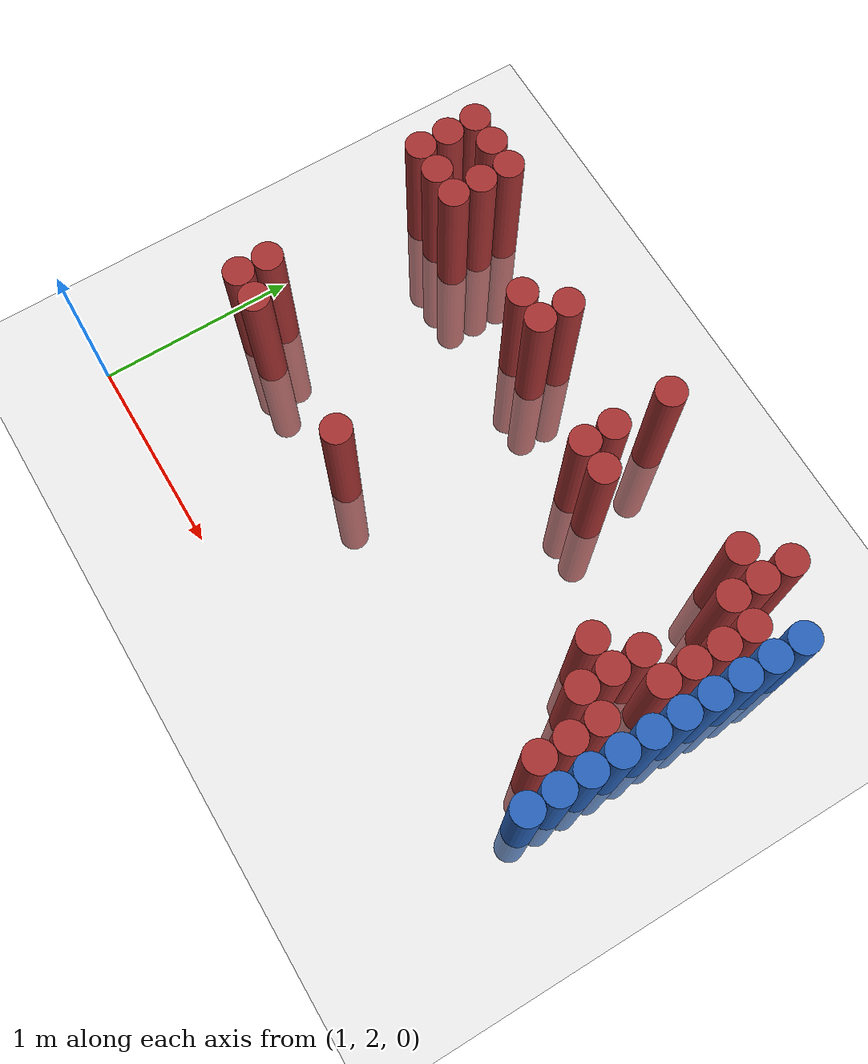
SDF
<sdf version="1.6">
 <world name="default">
  <model name="ground_plane">
   <static>1</static>
   <link name="link">
    <collision name="collision">
     <geometry><plane><normal>0 0 1</normal><size>100 100</size></plane></geometry>
     <surface><friction><ode><mu>100</mu><mu2>50</mu2></ode></friction></surface>
    </collision>
    <visual name="visual">
     <cast_shadows>0</cast_shadows>
     <geometry><plane><normal>0 0 1</normal><size>100 100</size></plane></geometry>
     <material>
      <script><uri>file://media/materials/scripts/gazebo.material</uri><name>Gazebo/Grey</name></script>
     </material>
    </visual>
   </link>
  </model>
  <model name="unit_cylinder_150">
   <static>1</static>
   <pose>3.925000 2.725000 0.000000 0.000000 0.000000 0.000000</pose>
   <link name="link">
    <inertial>
     <mass>1</mass>
     <inertia><ixx>0.145833</ixx><ixy>0</ixy><ixz>0</ixz><iyy>0.145833</iyy><iyz>0</iyz><izz>0.125</izz></inertia>
    </inertial>
    <collision name="collision">
     <geometry><cylinder><radius>0.075000</radius><length>1.5</length></cylinder></geometry>
    </collision>
    <visual name="visual">
     <geometry><cylinder><radius>0.075000</radius><length>1.5</length></cylinder></geometry>
     <material>
      <ambient>0.152000 0.379000 0.720000 1</ambient>
      <diffuse>0.152000 0.379000 0.720000 1</diffuse>
     </material>
     <material>
      <script><name>Gazebo/Grey</name><uri>file://media/materials/scripts/gazebo.material</uri></script>
     </material>
    </visual>
   </link>
  </model>
  <model name="unit_cylinder_152">
   <static>1</static>
   <pose>3.925000 2.875000 0.000000 0.000000 0.000000 0.000000</pose>
   <link name="link">
    <inertial>
     <mass>1</mass>
     <inertia><ixx>0.145833</ixx><ixy>0</ixy><ixz>0</ixz><iyy>0.145833</iyy><iyz>0</iyz><izz>0.125</izz></inertia>
    </inertial>
    <collision name="collision">
     <geometry><cylinder><radius>0.075000</radius><length>1.5</length></cylinder></geometry>
    </collision>
    <visual name="visual">
     <geometry><cylinder><radius>0.075000</radius><length>1.5</length></cylinder></geometry>
     <material>
      <ambient>0.152000 0.379000 0.720000 1</ambient>
      <diffuse>0.152000 0.379000 0.720000 1</diffuse>
     </material>
     <material>
      <script><name>Gazebo/Grey</name><uri>file://media/materials/scripts/gazebo.material</uri></script>
     </material>
    </visual>
   </link>
  </model>
  <model name="unit_cylinder_154">
   <static>1</static>
   <pose>3.925000 3.025000 0.000000 0.000000 0.000000 0.000000</pose>
   <link name="link">
    <inertial>
     <mass>1</mass>
     <inertia><ixx>0.145833</ixx><ixy>0</ixy><ixz>0</ixz><iyy>0.145833</iyy><iyz>0</iyz><izz>0.125</izz></inertia>
    </inertial>
    <collision name="collision">
     <geometry><cylinder><radius>0.075000</radius><length>1.5</length></cylinder></geometry>
    </collision>
    <visual name="visual">
     <geometry><cylinder><radius>0.075000</radius><length>1.5</length></cylinder></geometry>
     <material>
      <ambient>0.152000 0.379000 0.720000 1</ambient>
      <diffuse>0.152000 0.379000 0.720000 1</diffuse>
     </material>
     <material>
      <script><name>Gazebo/Grey</name><uri>file://media/materials/scripts/gazebo.material</uri></script>
     </material>
    </visual>
   </link>
  </model>
  <model name="unit_cylinder_156">
   <static>1</static>
   <pose>3.925000 3.175000 0.000000 0.000000 0.000000 0.000000</pose>
   <link name="link">
    <inertial>
     <mass>1</mass>
     <inertia><ixx>0.145833</ixx><ixy>0</ixy><ixz>0</ixz><iyy>0.145833</iyy><iyz>0</iyz><izz>0.125</izz></inertia>
    </inertial>
    <collision name="collision">
     <geometry><cylinder><radius>0.075000</radius><length>1.5</length></cylinder></geometry>
    </collision>
    <visual name="visual">
     <geometry><cylinder><radius>0.075000</radius><length>1.5</length></cylinder></geometry>
     <material>
      <ambient>0.152000 0.379000 0.720000 1</ambient>
      <diffuse>0.152000 0.379000 0.720000 1</diffuse>
     </material>
     <material>
      <script><name>Gazebo/Grey</name><uri>file://media/materials/scripts/gazebo.material</uri></script>
     </material>
    </visual>
   </link>
  </model>
  <model name="unit_cylinder_158">
   <static>1</static>
   <pose>3.925000 3.325000 0.000000 0.000000 0.000000 0.000000</pose>
   <link name="link">
    <inertial>
     <mass>1</mass>
     <inertia><ixx>0.145833</ixx><ixy>0</ixy><ixz>0</ixz><iyy>0.145833</iyy><iyz>0</iyz><izz>0.125</izz></inertia>
    </inertial>
    <collision name="collision">
     <geometry><cylinder><radius>0.075000</radius><length>1.5</length></cylinder></geometry>
    </collision>
    <visual name="visual">
     <geometry><cylinder><radius>0.075000</radius><length>1.5</length></cylinder></geometry>
     <material>
      <ambient>0.152000 0.379000 0.720000 1</ambient>
      <diffuse>0.152000 0.379000 0.720000 1</diffuse>
     </material>
     <material>
      <script><name>Gazebo/Grey</name><uri>file://media/materials/scripts/gazebo.material</uri></script>
     </material>
    </visual>
   </link>
  </model>
  <model name="unit_cylinder_160">
   <static>1</static>
   <pose>3.925000 3.475000 0.000000 0.000000 0.000000 0.000000</pose>
   <link name="link">
    <inertial>
     <mass>1</mass>
     <inertia><ixx>0.145833</ixx><ixy>0</ixy><ixz>0</ixz><iyy>0.145833</iyy><iyz>0</iyz><izz>0.125</izz></inertia>
    </inertial>
    <collision name="collision">
     <geometry><cylinder><radius>0.075000</radius><length>1.5</length></cylinder></geometry>
    </collision>
    <visual name="visual">
     <geometry><cylinder><radius>0.075000</radius><length>1.5</length></cylinder></geometry>
     <material>
      <ambient>0.152000 0.379000 0.720000 1</ambient>
      <diffuse>0.152000 0.379000 0.720000 1</diffuse>
     </material>
     <material>
      <script><name>Gazebo/Grey</name><uri>file://media/materials/scripts/gazebo.material</uri></script>
     </material>
    </visual>
   </link>
  </model>
  <model name="unit_cylinder_162">
   <static>1</static>
   <pose>3.925000 3.625000 0.000000 0.000000 0.000000 0.000000</pose>
   <link name="link">
    <inertial>
     <mass>1</mass>
     <inertia><ixx>0.145833</ixx><ixy>0</ixy><ixz>0</ixz><iyy>0.145833</iyy><iyz>0</iyz><izz>0.125</izz></inertia>
    </inertial>
    <collision name="collision">
     <geometry><cylinder><radius>0.075000</radius><length>1.5</length></cylinder></geometry>
    </collision>
    <visual name="visual">
     <geometry><cylinder><radius>0.075000</radius><length>1.5</length></cylinder></geometry>
     <material>
      <ambient>0.152000 0.379000 0.720000 1</ambient>
      <diffuse>0.152000 0.379000 0.720000 1</diffuse>
     </material>
     <material>
      <script><name>Gazebo/Grey</name><uri>file://media/materials/scripts/gazebo.material</uri></script>
     </material>
    </visual>
   </link>
  </model>
  <model name="unit_cylinder_164">
   <static>1</static>
   <pose>3.925000 3.775000 0.000000 0.000000 0.000000 0.000000</pose>
   <link name="link">
    <inertial>
     <mass>1</mass>
     <inertia><ixx>0.145833</ixx><ixy>0</ixy><ixz>0</ixz><iyy>0.145833</iyy><iyz>0</iyz><izz>0.125</izz></inertia>
    </inertial>
    <collision name="collision">
     <geometry><cylinder><radius>0.075000</radius><length>1.5</length></cylinder></geometry>
    </collision>
    <visual name="visual">
     <geometry><cylinder><radius>0.075000</radius><length>1.5</length></cylinder></geometry>
     <material>
      <ambient>0.152000 0.379000 0.720000 1</ambient>
      <diffuse>0.152000 0.379000 0.720000 1</diffuse>
     </material>
     <material>
      <script><name>Gazebo/Grey</name><uri>file://media/materials/scripts/gazebo.material</uri></script>
     </material>
    </visual>
   </link>
  </model>
  <model name="unit_cylinder_166">
   <static>1</static>
   <pose>3.925000 3.925000 0.000000 0.000000 0.000000 0.000000</pose>
   <link name="link">
    <inertial>
     <mass>1</mass>
     <inertia><ixx>0.145833</ixx><ixy>0</ixy><ixz>0</ixz><iyy>0.145833</iyy><iyz>0</iyz><izz>0.125</izz></inertia>
    </inertial>
    <collision name="collision">
     <geometry><cylinder><radius>0.075000</radius><length>1.5</length></cylinder></geometry>
    </collision>
    <visual name="visual">
     <geometry><cylinder><radius>0.075000</radius><length>1.5</length></cylinder></geometry>
     <material>
      <ambient>0.152000 0.379000 0.720000 1</ambient>
      <diffuse>0.152000 0.379000 0.720000 1</diffuse>
     </material>
     <material>
      <script><name>Gazebo/Grey</name><uri>file://media/materials/scripts/gazebo.material</uri></script>
     </material>
    </visual>
   </link>
  </model>
  <model name="unit_cylinder_443">
   <static>1</static>
   <pose>1.075000 3.775000 0.000000 0.000000 0.000000 0.000000</pose>
   <link name="link">
    <inertial>
     <mass>1</mass>
     <inertia><ixx>0.145833</ixx><ixy>0</ixy><ixz>0</ixz><iyy>0.145833</iyy><iyz>0</iyz><izz>0.125</izz></inertia>
    </inertial>
    <collision name="collision">
     <geometry><cylinder><radius>0.075000</radius><length>1.5</length></cylinder></geometry>
    </collision>
    <visual name="visual">
     <geometry><cylinder><radius>0.075000</radius><length>1.5</length></cylinder></geometry>
     <material>
      <ambient>0.648000 0.192000 0.192000 1</ambient>
      <diffuse>0.648000 0.192000 0.192000 1</diffuse>
     </material>
     <material>
      <script><name>Gazebo/Grey</name><uri>file://media/materials/scripts/gazebo.material</uri></script>
     </material>
    </visual>
   </link>
  </model>
  <model name="unit_cylinder_444">
   <static>1</static>
   <pose>1.075000 3.925000 0.000000 0.000000 0.000000 0.000000</pose>
   <link name="link">
    <inertial>
     <mass>1</mass>
     <inertia><ixx>0.145833</ixx><ixy>0</ixy><ixz>0</ixz><iyy>0.145833</iyy><iyz>0</iyz><izz>0.125</izz></inertia>
    </inertial>
    <collision name="collision">
     <geometry><cylinder><radius>0.075000</radius><length>1.5</length></cylinder></geometry>
    </collision>
    <visual name="visual">
     <geometry><cylinder><radius>0.075000</radius><length>1.5</length></cylinder></geometry>
     <material>
      <ambient>0.648000 0.192000 0.192000 1</ambient>
      <diffuse>0.648000 0.192000 0.192000 1</diffuse>
     </material>
     <material>
      <script><name>Gazebo/Grey</name><uri>file://media/materials/scripts/gazebo.material</uri></script>
     </material>
    </visual>
   </link>
  </model>
  <model name="unit_cylinder_445">
   <static>1</static>
   <pose>1.075000 4.075000 0.000000 0.000000 0.000000 0.000000</pose>
   <link name="link">
    <inertial>
     <mass>1</mass>
     <inertia><ixx>0.145833</ixx><ixy>0</ixy><ixz>0</ixz><iyy>0.145833</iyy><iyz>0</iyz><izz>0.125</izz></inertia>
    </inertial>
    <collision name="collision">
     <geometry><cylinder><radius>0.075000</radius><length>1.5</length></cylinder></geometry>
    </collision>
    <visual name="visual">
     <geometry><cylinder><radius>0.075000</radius><length>1.5</length></cylinder></geometry>
     <material>
      <ambient>0.648000 0.192000 0.192000 1</ambient>
      <diffuse>0.648000 0.192000 0.192000 1</diffuse>
     </material>
     <material>
      <script><name>Gazebo/Grey</name><uri>file://media/materials/scripts/gazebo.material</uri></script>
     </material>
    </visual>
   </link>
  </model>
  <model name="unit_cylinder_454">
   <static>1</static>
   <pose>1.225000 2.725000 0.000000 0.000000 0.000000 0.000000</pose>
   <link name="link">
    <inertial>
     <mass>1</mass>
     <inertia><ixx>0.145833</ixx><ixy>0</ixy><ixz>0</ixz><iyy>0.145833</iyy><iyz>0</iyz><izz>0.125</izz></inertia>
    </inertial>
    <collision name="collision">
     <geometry><cylinder><radius>0.075000</radius><length>1.5</length></cylinder></geometry>
    </collision>
    <visual name="visual">
     <geometry><cylinder><radius>0.075000</radius><length>1.5</length></cylinder></geometry>
     <material>
      <ambient>0.648000 0.192000 0.192000 1</ambient>
      <diffuse>0.648000 0.192000 0.192000 1</diffuse>
     </material>
     <material>
      <script><name>Gazebo/Grey</name><uri>file://media/materials/scripts/gazebo.material</uri></script>
     </material>
    </visual>
   </link>
  </model>
  <model name="unit_cylinder_455">
   <static>1</static>
   <pose>1.225000 2.875000 0.000000 0.000000 0.000000 0.000000</pose>
   <link name="link">
    <inertial>
     <mass>1</mass>
     <inertia><ixx>0.145833</ixx><ixy>0</ixy><ixz>0</ixz><iyy>0.145833</iyy><iyz>0</iyz><izz>0.125</izz></inertia>
    </inertial>
    <collision name="collision">
     <geometry><cylinder><radius>0.075000</radius><length>1.5</length></cylinder></geometry>
    </collision>
    <visual name="visual">
     <geometry><cylinder><radius>0.075000</radius><length>1.5</length></cylinder></geometry>
     <material>
      <ambient>0.648000 0.192000 0.192000 1</ambient>
      <diffuse>0.648000 0.192000 0.192000 1</diffuse>
     </material>
     <material>
      <script><name>Gazebo/Grey</name><uri>file://media/materials/scripts/gazebo.material</uri></script>
     </material>
    </visual>
   </link>
  </model>
  <model name="unit_cylinder_456">
   <static>1</static>
   <pose>1.225000 3.775000 0.000000 0.000000 0.000000 0.000000</pose>
   <link name="link">
    <inertial>
     <mass>1</mass>
     <inertia><ixx>0.145833</ixx><ixy>0</ixy><ixz>0</ixz><iyy>0.145833</iyy><iyz>0</iyz><izz>0.125</izz></inertia>
    </inertial>
    <collision name="collision">
     <geometry><cylinder><radius>0.075000</radius><length>1.5</length></cylinder></geometry>
    </collision>
    <visual name="visual">
     <geometry><cylinder><radius>0.075000</radius><length>1.5</length></cylinder></geometry>
     <material>
      <ambient>0.648000 0.192000 0.192000 1</ambient>
      <diffuse>0.648000 0.192000 0.192000 1</diffuse>
     </material>
     <material>
      <script><name>Gazebo/Grey</name><uri>file://media/materials/scripts/gazebo.material</uri></script>
     </material>
    </visual>
   </link>
  </model>
  <model name="unit_cylinder_457">
   <static>1</static>
   <pose>1.225000 4.075000 0.000000 0.000000 0.000000 0.000000</pose>
   <link name="link">
    <inertial>
     <mass>1</mass>
     <inertia><ixx>0.145833</ixx><ixy>0</ixy><ixz>0</ixz><iyy>0.145833</iyy><iyz>0</iyz><izz>0.125</izz></inertia>
    </inertial>
    <collision name="collision">
     <geometry><cylinder><radius>0.075000</radius><length>1.5</length></cylinder></geometry>
    </collision>
    <visual name="visual">
     <geometry><cylinder><radius>0.075000</radius><length>1.5</length></cylinder></geometry>
     <material>
      <ambient>0.648000 0.192000 0.192000 1</ambient>
      <diffuse>0.648000 0.192000 0.192000 1</diffuse>
     </material>
     <material>
      <script><name>Gazebo/Grey</name><uri>file://media/materials/scripts/gazebo.material</uri></script>
     </material>
    </visual>
   </link>
  </model>
  <model name="unit_cylinder_463">
   <static>1</static>
   <pose>1.375000 2.725000 0.000000 0.000000 0.000000 0.000000</pose>
   <link name="link">
    <inertial>
     <mass>1</mass>
     <inertia><ixx>0.145833</ixx><ixy>0</ixy><ixz>0</ixz><iyy>0.145833</iyy><iyz>0</iyz><izz>0.125</izz></inertia>
    </inertial>
    <collision name="collision">
     <geometry><cylinder><radius>0.075000</radius><length>1.5</length></cylinder></geometry>
    </collision>
    <visual name="visual">
     <geometry><cylinder><radius>0.075000</radius><length>1.5</length></cylinder></geometry>
     <material>
      <ambient>0.648000 0.192000 0.192000 1</ambient>
      <diffuse>0.648000 0.192000 0.192000 1</diffuse>
     </material>
     <material>
      <script><name>Gazebo/Grey</name><uri>file://media/materials/scripts/gazebo.material</uri></script>
     </material>
    </visual>
   </link>
  </model>
  <model name="unit_cylinder_464">
   <static>1</static>
   <pose>1.375000 3.775000 0.000000 0.000000 0.000000 0.000000</pose>
   <link name="link">
    <inertial>
     <mass>1</mass>
     <inertia><ixx>0.145833</ixx><ixy>0</ixy><ixz>0</ixz><iyy>0.145833</iyy><iyz>0</iyz><izz>0.125</izz></inertia>
    </inertial>
    <collision name="collision">
     <geometry><cylinder><radius>0.075000</radius><length>1.5</length></cylinder></geometry>
    </collision>
    <visual name="visual">
     <geometry><cylinder><radius>0.075000</radius><length>1.5</length></cylinder></geometry>
     <material>
      <ambient>0.648000 0.192000 0.192000 1</ambient>
      <diffuse>0.648000 0.192000 0.192000 1</diffuse>
     </material>
     <material>
      <script><name>Gazebo/Grey</name><uri>file://media/materials/scripts/gazebo.material</uri></script>
     </material>
    </visual>
   </link>
  </model>
  <model name="unit_cylinder_465">
   <static>1</static>
   <pose>1.375000 3.925000 0.000000 0.000000 0.000000 0.000000</pose>
   <link name="link">
    <inertial>
     <mass>1</mass>
     <inertia><ixx>0.145833</ixx><ixy>0</ixy><ixz>0</ixz><iyy>0.145833</iyy><iyz>0</iyz><izz>0.125</izz></inertia>
    </inertial>
    <collision name="collision">
     <geometry><cylinder><radius>0.075000</radius><length>1.5</length></cylinder></geometry>
    </collision>
    <visual name="visual">
     <geometry><cylinder><radius>0.075000</radius><length>1.5</length></cylinder></geometry>
     <material>
      <ambient>0.648000 0.192000 0.192000 1</ambient>
      <diffuse>0.648000 0.192000 0.192000 1</diffuse>
     </material>
     <material>
      <script><name>Gazebo/Grey</name><uri>file://media/materials/scripts/gazebo.material</uri></script>
     </material>
    </visual>
   </link>
  </model>
  <model name="unit_cylinder_466">
   <static>1</static>
   <pose>1.375000 4.075000 0.000000 0.000000 0.000000 0.000000</pose>
   <link name="link">
    <inertial>
     <mass>1</mass>
     <inertia><ixx>0.145833</ixx><ixy>0</ixy><ixz>0</ixz><iyy>0.145833</iyy><iyz>0</iyz><izz>0.125</izz></inertia>
    </inertial>
    <collision name="collision">
     <geometry><cylinder><radius>0.075000</radius><length>1.5</length></cylinder></geometry>
    </collision>
    <visual name="visual">
     <geometry><cylinder><radius>0.075000</radius><length>1.5</length></cylinder></geometry>
     <material>
      <ambient>0.648000 0.192000 0.192000 1</ambient>
      <diffuse>0.648000 0.192000 0.192000 1</diffuse>
     </material>
     <material>
      <script><name>Gazebo/Grey</name><uri>file://media/materials/scripts/gazebo.material</uri></script>
     </material>
    </visual>
   </link>
  </model>
  <model name="unit_cylinder_488">
   <static>1</static>
   <pose>1.975000 3.775000 0.000000 0.000000 0.000000 0.000000</pose>
   <link name="link">
    <inertial>
     <mass>1</mass>
     <inertia><ixx>0.145833</ixx><ixy>0</ixy><ixz>0</ixz><iyy>0.145833</iyy><iyz>0</iyz><izz>0.125</izz></inertia>
    </inertial>
    <collision name="collision">
     <geometry><cylinder><radius>0.075000</radius><length>1.5</length></cylinder></geometry>
    </collision>
    <visual name="visual">
     <geometry><cylinder><radius>0.075000</radius><length>1.5</length></cylinder></geometry>
     <material>
      <ambient>0.648000 0.192000 0.192000 1</ambient>
      <diffuse>0.648000 0.192000 0.192000 1</diffuse>
     </material>
     <material>
      <script><name>Gazebo/Grey</name><uri>file://media/materials/scripts/gazebo.material</uri></script>
     </material>
    </visual>
   </link>
  </model>
  <model name="unit_cylinder_491">
   <static>1</static>
   <pose>2.125000 2.725000 0.000000 0.000000 0.000000 0.000000</pose>
   <link name="link">
    <inertial>
     <mass>1</mass>
     <inertia><ixx>0.145833</ixx><ixy>0</ixy><ixz>0</ixz><iyy>0.145833</iyy><iyz>0</iyz><izz>0.125</izz></inertia>
    </inertial>
    <collision name="collision">
     <geometry><cylinder><radius>0.075000</radius><length>1.5</length></cylinder></geometry>
    </collision>
    <visual name="visual">
     <geometry><cylinder><radius>0.075000</radius><length>1.5</length></cylinder></geometry>
     <material>
      <ambient>0.648000 0.192000 0.192000 1</ambient>
      <diffuse>0.648000 0.192000 0.192000 1</diffuse>
     </material>
     <material>
      <script><name>Gazebo/Grey</name><uri>file://media/materials/scripts/gazebo.material</uri></script>
     </material>
    </visual>
   </link>
  </model>
  <model name="unit_cylinder_492">
   <static>1</static>
   <pose>2.125000 3.775000 0.000000 0.000000 0.000000 0.000000</pose>
   <link name="link">
    <inertial>
     <mass>1</mass>
     <inertia><ixx>0.145833</ixx><ixy>0</ixy><ixz>0</ixz><iyy>0.145833</iyy><iyz>0</iyz><izz>0.125</izz></inertia>
    </inertial>
    <collision name="collision">
     <geometry><cylinder><radius>0.075000</radius><length>1.5</length></cylinder></geometry>
    </collision>
    <visual name="visual">
     <geometry><cylinder><radius>0.075000</radius><length>1.5</length></cylinder></geometry>
     <material>
      <ambient>0.648000 0.192000 0.192000 1</ambient>
      <diffuse>0.648000 0.192000 0.192000 1</diffuse>
     </material>
     <material>
      <script><name>Gazebo/Grey</name><uri>file://media/materials/scripts/gazebo.material</uri></script>
     </material>
    </visual>
   </link>
  </model>
  <model name="unit_cylinder_493">
   <static>1</static>
   <pose>2.125000 3.925000 0.000000 0.000000 0.000000 0.000000</pose>
   <link name="link">
    <inertial>
     <mass>1</mass>
     <inertia><ixx>0.145833</ixx><ixy>0</ixy><ixz>0</ixz><iyy>0.145833</iyy><iyz>0</iyz><izz>0.125</izz></inertia>
    </inertial>
    <collision name="collision">
     <geometry><cylinder><radius>0.075000</radius><length>1.5</length></cylinder></geometry>
    </collision>
    <visual name="visual">
     <geometry><cylinder><radius>0.075000</radius><length>1.5</length></cylinder></geometry>
     <material>
      <ambient>0.648000 0.192000 0.192000 1</ambient>
      <diffuse>0.648000 0.192000 0.192000 1</diffuse>
     </material>
     <material>
      <script><name>Gazebo/Grey</name><uri>file://media/materials/scripts/gazebo.material</uri></script>
     </material>
    </visual>
   </link>
  </model>
  <model name="unit_cylinder_514">
   <static>1</static>
   <pose>2.725000 3.625000 0.000000 0.000000 0.000000 0.000000</pose>
   <link name="link">
    <inertial>
     <mass>1</mass>
     <inertia><ixx>0.145833</ixx><ixy>0</ixy><ixz>0</ixz><iyy>0.145833</iyy><iyz>0</iyz><izz>0.125</izz></inertia>
    </inertial>
    <collision name="collision">
     <geometry><cylinder><radius>0.075000</radius><length>1.5</length></cylinder></geometry>
    </collision>
    <visual name="visual">
     <geometry><cylinder><radius>0.075000</radius><length>1.5</length></cylinder></geometry>
     <material>
      <ambient>0.648000 0.192000 0.192000 1</ambient>
      <diffuse>0.648000 0.192000 0.192000 1</diffuse>
     </material>
     <material>
      <script><name>Gazebo/Grey</name><uri>file://media/materials/scripts/gazebo.material</uri></script>
     </material>
    </visual>
   </link>
  </model>
  <model name="unit_cylinder_515">
   <static>1</static>
   <pose>2.725000 3.775000 0.000000 0.000000 0.000000 0.000000</pose>
   <link name="link">
    <inertial>
     <mass>1</mass>
     <inertia><ixx>0.145833</ixx><ixy>0</ixy><ixz>0</ixz><iyy>0.145833</iyy><iyz>0</iyz><izz>0.125</izz></inertia>
    </inertial>
    <collision name="collision">
     <geometry><cylinder><radius>0.075000</radius><length>1.5</length></cylinder></geometry>
    </collision>
    <visual name="visual">
     <geometry><cylinder><radius>0.075000</radius><length>1.5</length></cylinder></geometry>
     <material>
      <ambient>0.648000 0.192000 0.192000 1</ambient>
      <diffuse>0.648000 0.192000 0.192000 1</diffuse>
     </material>
     <material>
      <script><name>Gazebo/Grey</name><uri>file://media/materials/scripts/gazebo.material</uri></script>
     </material>
    </visual>
   </link>
  </model>
  <model name="unit_cylinder_516">
   <static>1</static>
   <pose>2.725000 4.075000 0.000000 0.000000 0.000000 0.000000</pose>
   <link name="link">
    <inertial>
     <mass>1</mass>
     <inertia><ixx>0.145833</ixx><ixy>0</ixy><ixz>0</ixz><iyy>0.145833</iyy><iyz>0</iyz><izz>0.125</izz></inertia>
    </inertial>
    <collision name="collision">
     <geometry><cylinder><radius>0.075000</radius><length>1.5</length></cylinder></geometry>
    </collision>
    <visual name="visual">
     <geometry><cylinder><radius>0.075000</radius><length>1.5</length></cylinder></geometry>
     <material>
      <ambient>0.648000 0.192000 0.192000 1</ambient>
      <diffuse>0.648000 0.192000 0.192000 1</diffuse>
     </material>
     <material>
      <script><name>Gazebo/Grey</name><uri>file://media/materials/scripts/gazebo.material</uri></script>
     </material>
    </visual>
   </link>
  </model>
  <model name="unit_cylinder_525">
   <static>1</static>
   <pose>2.875000 3.625000 0.000000 0.000000 0.000000 0.000000</pose>
   <link name="link">
    <inertial>
     <mass>1</mass>
     <inertia><ixx>0.145833</ixx><ixy>0</ixy><ixz>0</ixz><iyy>0.145833</iyy><iyz>0</iyz><izz>0.125</izz></inertia>
    </inertial>
    <collision name="collision">
     <geometry><cylinder><radius>0.075000</radius><length>1.5</length></cylinder></geometry>
    </collision>
    <visual name="visual">
     <geometry><cylinder><radius>0.075000</radius><length>1.5</length></cylinder></geometry>
     <material>
      <ambient>0.648000 0.192000 0.192000 1</ambient>
      <diffuse>0.648000 0.192000 0.192000 1</diffuse>
     </material>
     <material>
      <script><name>Gazebo/Grey</name><uri>file://media/materials/scripts/gazebo.material</uri></script>
     </material>
    </visual>
   </link>
  </model>
  <model name="unit_cylinder_547">
   <static>1</static>
   <pose>3.475000 3.175000 0.000000 0.000000 0.000000 0.000000</pose>
   <link name="link">
    <inertial>
     <mass>1</mass>
     <inertia><ixx>0.145833</ixx><ixy>0</ixy><ixz>0</ixz><iyy>0.145833</iyy><iyz>0</iyz><izz>0.125</izz></inertia>
    </inertial>
    <collision name="collision">
     <geometry><cylinder><radius>0.075000</radius><length>1.5</length></cylinder></geometry>
    </collision>
    <visual name="visual">
     <geometry><cylinder><radius>0.075000</radius><length>1.5</length></cylinder></geometry>
     <material>
      <ambient>0.648000 0.192000 0.192000 1</ambient>
      <diffuse>0.648000 0.192000 0.192000 1</diffuse>
     </material>
     <material>
      <script><name>Gazebo/Grey</name><uri>file://media/materials/scripts/gazebo.material</uri></script>
     </material>
    </visual>
   </link>
  </model>
  <model name="unit_cylinder_548">
   <static>1</static>
   <pose>3.475000 3.925000 0.000000 0.000000 0.000000 0.000000</pose>
   <link name="link">
    <inertial>
     <mass>1</mass>
     <inertia><ixx>0.145833</ixx><ixy>0</ixy><ixz>0</ixz><iyy>0.145833</iyy><iyz>0</iyz><izz>0.125</izz></inertia>
    </inertial>
    <collision name="collision">
     <geometry><cylinder><radius>0.075000</radius><length>1.5</length></cylinder></geometry>
    </collision>
    <visual name="visual">
     <geometry><cylinder><radius>0.075000</radius><length>1.5</length></cylinder></geometry>
     <material>
      <ambient>0.648000 0.192000 0.192000 1</ambient>
      <diffuse>0.648000 0.192000 0.192000 1</diffuse>
     </material>
     <material>
      <script><name>Gazebo/Grey</name><uri>file://media/materials/scripts/gazebo.material</uri></script>
     </material>
    </visual>
   </link>
  </model>
  <model name="unit_cylinder_555">
   <static>1</static>
   <pose>3.625000 3.025000 0.000000 0.000000 0.000000 0.000000</pose>
   <link name="link">
    <inertial>
     <mass>1</mass>
     <inertia><ixx>0.145833</ixx><ixy>0</ixy><ixz>0</ixz><iyy>0.145833</iyy><iyz>0</iyz><izz>0.125</izz></inertia>
    </inertial>
    <collision name="collision">
     <geometry><cylinder><radius>0.075000</radius><length>1.5</length></cylinder></geometry>
    </collision>
    <visual name="visual">
     <geometry><cylinder><radius>0.075000</radius><length>1.5</length></cylinder></geometry>
     <material>
      <ambient>0.648000 0.192000 0.192000 1</ambient>
      <diffuse>0.648000 0.192000 0.192000 1</diffuse>
     </material>
     <material>
      <script><name>Gazebo/Grey</name><uri>file://media/materials/scripts/gazebo.material</uri></script>
     </material>
    </visual>
   </link>
  </model>
  <model name="unit_cylinder_556">
   <static>1</static>
   <pose>3.625000 3.175000 0.000000 0.000000 0.000000 0.000000</pose>
   <link name="link">
    <inertial>
     <mass>1</mass>
     <inertia><ixx>0.145833</ixx><ixy>0</ixy><ixz>0</ixz><iyy>0.145833</iyy><iyz>0</iyz><izz>0.125</izz></inertia>
    </inertial>
    <collision name="collision">
     <geometry><cylinder><radius>0.075000</radius><length>1.5</length></cylinder></geometry>
    </collision>
    <visual name="visual">
     <geometry><cylinder><radius>0.075000</radius><length>1.5</length></cylinder></geometry>
     <material>
      <ambient>0.648000 0.192000 0.192000 1</ambient>
      <diffuse>0.648000 0.192000 0.192000 1</diffuse>
     </material>
     <material>
      <script><name>Gazebo/Grey</name><uri>file://media/materials/scripts/gazebo.material</uri></script>
     </material>
    </visual>
   </link>
  </model>
  <model name="unit_cylinder_557">
   <static>1</static>
   <pose>3.625000 3.325000 0.000000 0.000000 0.000000 0.000000</pose>
   <link name="link">
    <inertial>
     <mass>1</mass>
     <inertia><ixx>0.145833</ixx><ixy>0</ixy><ixz>0</ixz><iyy>0.145833</iyy><iyz>0</iyz><izz>0.125</izz></inertia>
    </inertial>
    <collision name="collision">
     <geometry><cylinder><radius>0.075000</radius><length>1.5</length></cylinder></geometry>
    </collision>
    <visual name="visual">
     <geometry><cylinder><radius>0.075000</radius><length>1.5</length></cylinder></geometry>
     <material>
      <ambient>0.648000 0.192000 0.192000 1</ambient>
      <diffuse>0.648000 0.192000 0.192000 1</diffuse>
     </material>
     <material>
      <script><name>Gazebo/Grey</name><uri>file://media/materials/scripts/gazebo.material</uri></script>
     </material>
    </visual>
   </link>
  </model>
  <model name="unit_cylinder_558">
   <static>1</static>
   <pose>3.625000 3.775000 0.000000 0.000000 0.000000 0.000000</pose>
   <link name="link">
    <inertial>
     <mass>1</mass>
     <inertia><ixx>0.145833</ixx><ixy>0</ixy><ixz>0</ixz><iyy>0.145833</iyy><iyz>0</iyz><izz>0.125</izz></inertia>
    </inertial>
    <collision name="collision">
     <geometry><cylinder><radius>0.075000</radius><length>1.5</length></cylinder></geometry>
    </collision>
    <visual name="visual">
     <geometry><cylinder><radius>0.075000</radius><length>1.5</length></cylinder></geometry>
     <material>
      <ambient>0.648000 0.192000 0.192000 1</ambient>
      <diffuse>0.648000 0.192000 0.192000 1</diffuse>
     </material>
     <material>
      <script><name>Gazebo/Grey</name><uri>file://media/materials/scripts/gazebo.material</uri></script>
     </material>
    </visual>
   </link>
  </model>
  <model name="unit_cylinder_559">
   <static>1</static>
   <pose>3.625000 3.925000 0.000000 0.000000 0.000000 0.000000</pose>
   <link name="link">
    <inertial>
     <mass>1</mass>
     <inertia><ixx>0.145833</ixx><ixy>0</ixy><ixz>0</ixz><iyy>0.145833</iyy><iyz>0</iyz><izz>0.125</izz></inertia>
    </inertial>
    <collision name="collision">
     <geometry><cylinder><radius>0.075000</radius><length>1.5</length></cylinder></geometry>
    </collision>
    <visual name="visual">
     <geometry><cylinder><radius>0.075000</radius><length>1.5</length></cylinder></geometry>
     <material>
      <ambient>0.648000 0.192000 0.192000 1</ambient>
      <diffuse>0.648000 0.192000 0.192000 1</diffuse>
     </material>
     <material>
      <script><name>Gazebo/Grey</name><uri>file://media/materials/scripts/gazebo.material</uri></script>
     </material>
    </visual>
   </link>
  </model>
  <model name="unit_cylinder_560">
   <static>1</static>
   <pose>3.625000 4.075000 0.000000 0.000000 0.000000 0.000000</pose>
   <link name="link">
    <inertial>
     <mass>1</mass>
     <inertia><ixx>0.145833</ixx><ixy>0</ixy><ixz>0</ixz><iyy>0.145833</iyy><iyz>0</iyz><izz>0.125</izz></inertia>
    </inertial>
    <collision name="collision">
     <geometry><cylinder><radius>0.075000</radius><length>1.5</length></cylinder></geometry>
    </collision>
    <visual name="visual">
     <geometry><cylinder><radius>0.075000</radius><length>1.5</length></cylinder></geometry>
     <material>
      <ambient>0.648000 0.192000 0.192000 1</ambient>
      <diffuse>0.648000 0.192000 0.192000 1</diffuse>
     </material>
     <material>
      <script><name>Gazebo/Grey</name><uri>file://media/materials/scripts/gazebo.material</uri></script>
     </material>
    </visual>
   </link>
  </model>
  <model name="unit_cylinder_580">
   <static>1</static>
   <pose>3.775000 2.725000 0.000000 0.000000 0.000000 0.000000</pose>
   <link name="link">
    <inertial>
     <mass>1</mass>
     <inertia><ixx>0.145833</ixx><ixy>0</ixy><ixz>0</ixz><iyy>0.145833</iyy><iyz>0</iyz><izz>0.125</izz></inertia>
    </inertial>
    <collision name="collision">
     <geometry><cylinder><radius>0.075000</radius><length>1.5</length></cylinder></geometry>
    </collision>
    <visual name="visual">
     <geometry><cylinder><radius>0.075000</radius><length>1.5</length></cylinder></geometry>
     <material>
      <ambient>0.648000 0.192000 0.192000 1</ambient>
      <diffuse>0.648000 0.192000 0.192000 1</diffuse>
     </material>
     <material>
      <script><name>Gazebo/Grey</name><uri>file://media/materials/scripts/gazebo.material</uri></script>
     </material>
    </visual>
   </link>
  </model>
  <model name="unit_cylinder_581">
   <static>1</static>
   <pose>3.775000 2.875000 0.000000 0.000000 0.000000 0.000000</pose>
   <link name="link">
    <inertial>
     <mass>1</mass>
     <inertia><ixx>0.145833</ixx><ixy>0</ixy><ixz>0</ixz><iyy>0.145833</iyy><iyz>0</iyz><izz>0.125</izz></inertia>
    </inertial>
    <collision name="collision">
     <geometry><cylinder><radius>0.075000</radius><length>1.5</length></cylinder></geometry>
    </collision>
    <visual name="visual">
     <geometry><cylinder><radius>0.075000</radius><length>1.5</length></cylinder></geometry>
     <material>
      <ambient>0.648000 0.192000 0.192000 1</ambient>
      <diffuse>0.648000 0.192000 0.192000 1</diffuse>
     </material>
     <material>
      <script><name>Gazebo/Grey</name><uri>file://media/materials/scripts/gazebo.material</uri></script>
     </material>
    </visual>
   </link>
  </model>
  <model name="unit_cylinder_582">
   <static>1</static>
   <pose>3.775000 3.025000 0.000000 0.000000 0.000000 0.000000</pose>
   <link name="link">
    <inertial>
     <mass>1</mass>
     <inertia><ixx>0.145833</ixx><ixy>0</ixy><ixz>0</ixz><iyy>0.145833</iyy><iyz>0</iyz><izz>0.125</izz></inertia>
    </inertial>
    <collision name="collision">
     <geometry><cylinder><radius>0.075000</radius><length>1.5</length></cylinder></geometry>
    </collision>
    <visual name="visual">
     <geometry><cylinder><radius>0.075000</radius><length>1.5</length></cylinder></geometry>
     <material>
      <ambient>0.648000 0.192000 0.192000 1</ambient>
      <diffuse>0.648000 0.192000 0.192000 1</diffuse>
     </material>
     <material>
      <script><name>Gazebo/Grey</name><uri>file://media/materials/scripts/gazebo.material</uri></script>
     </material>
    </visual>
   </link>
  </model>
  <model name="unit_cylinder_583">
   <static>1</static>
   <pose>3.775000 3.325000 0.000000 0.000000 0.000000 0.000000</pose>
   <link name="link">
    <inertial>
     <mass>1</mass>
     <inertia><ixx>0.145833</ixx><ixy>0</ixy><ixz>0</ixz><iyy>0.145833</iyy><iyz>0</iyz><izz>0.125</izz></inertia>
    </inertial>
    <collision name="collision">
     <geometry><cylinder><radius>0.075000</radius><length>1.5</length></cylinder></geometry>
    </collision>
    <visual name="visual">
     <geometry><cylinder><radius>0.075000</radius><length>1.5</length></cylinder></geometry>
     <material>
      <ambient>0.648000 0.192000 0.192000 1</ambient>
      <diffuse>0.648000 0.192000 0.192000 1</diffuse>
     </material>
     <material>
      <script><name>Gazebo/Grey</name><uri>file://media/materials/scripts/gazebo.material</uri></script>
     </material>
    </visual>
   </link>
  </model>
  <model name="unit_cylinder_584">
   <static>1</static>
   <pose>3.775000 3.475000 0.000000 0.000000 0.000000 0.000000</pose>
   <link name="link">
    <inertial>
     <mass>1</mass>
     <inertia><ixx>0.145833</ixx><ixy>0</ixy><ixz>0</ixz><iyy>0.145833</iyy><iyz>0</iyz><izz>0.125</izz></inertia>
    </inertial>
    <collision name="collision">
     <geometry><cylinder><radius>0.075000</radius><length>1.5</length></cylinder></geometry>
    </collision>
    <visual name="visual">
     <geometry><cylinder><radius>0.075000</radius><length>1.5</length></cylinder></geometry>
     <material>
      <ambient>0.648000 0.192000 0.192000 1</ambient>
      <diffuse>0.648000 0.192000 0.192000 1</diffuse>
     </material>
     <material>
      <script><name>Gazebo/Grey</name><uri>file://media/materials/scripts/gazebo.material</uri></script>
     </material>
    </visual>
   </link>
  </model>
  <model name="unit_cylinder_585">
   <static>1</static>
   <pose>3.775000 3.625000 0.000000 0.000000 0.000000 0.000000</pose>
   <link name="link">
    <inertial>
     <mass>1</mass>
     <inertia><ixx>0.145833</ixx><ixy>0</ixy><ixz>0</ixz><iyy>0.145833</iyy><iyz>0</iyz><izz>0.125</izz></inertia>
    </inertial>
    <collision name="collision">
     <geometry><cylinder><radius>0.075000</radius><length>1.5</length></cylinder></geometry>
    </collision>
    <visual name="visual">
     <geometry><cylinder><radius>0.075000</radius><length>1.5</length></cylinder></geometry>
     <material>
      <ambient>0.648000 0.192000 0.192000 1</ambient>
      <diffuse>0.648000 0.192000 0.192000 1</diffuse>
     </material>
     <material>
      <script><name>Gazebo/Grey</name><uri>file://media/materials/scripts/gazebo.material</uri></script>
     </material>
    </visual>
   </link>
  </model>
  <model name="unit_cylinder_586">
   <static>1</static>
   <pose>3.775000 3.775000 0.000000 0.000000 0.000000 0.000000</pose>
   <link name="link">
    <inertial>
     <mass>1</mass>
     <inertia><ixx>0.145833</ixx><ixy>0</ixy><ixz>0</ixz><iyy>0.145833</iyy><iyz>0</iyz><izz>0.125</izz></inertia>
    </inertial>
    <collision name="collision">
     <geometry><cylinder><radius>0.075000</radius><length>1.5</length></cylinder></geometry>
    </collision>
    <visual name="visual">
     <geometry><cylinder><radius>0.075000</radius><length>1.5</length></cylinder></geometry>
     <material>
      <ambient>0.648000 0.192000 0.192000 1</ambient>
      <diffuse>0.648000 0.192000 0.192000 1</diffuse>
     </material>
     <material>
      <script><name>Gazebo/Grey</name><uri>file://media/materials/scripts/gazebo.material</uri></script>
     </material>
    </visual>
   </link>
  </model>
  <model name="unit_cylinder_622">
   <static>1</static>
   <pose>3.925000 2.575000 0.000000 0.000000 0.000000 0.000000</pose>
   <link name="link">
    <inertial>
     <mass>1</mass>
     <inertia><ixx>0.145833</ixx><ixy>0</ixy><ixz>0</ixz><iyy>0.145833</iyy><iyz>0</iyz><izz>0.125</izz></inertia>
    </inertial>
    <collision name="collision">
     <geometry><cylinder><radius>0.075000</radius><length>1.5</length></cylinder></geometry>
    </collision>
    <visual name="visual">
     <geometry><cylinder><radius>0.075000</radius><length>1.5</length></cylinder></geometry>
     <material>
      <ambient>0.152000 0.379000 0.720000 1</ambient>
      <diffuse>0.152000 0.379000 0.720000 1</diffuse>
     </material>
     <material>
      <script><name>Gazebo/Grey</name><uri>file://media/materials/scripts/gazebo.material</uri></script>
     </material>
    </visual>
   </link>
  </model>
  <model name="unit_cylinder_623">
   <static>1</static>
   <pose>3.925000 2.725000 0.000000 0.000000 0.000000 0.000000</pose>
   <link name="link">
    <inertial>
     <mass>1</mass>
     <inertia><ixx>0.145833</ixx><ixy>0</ixy><ixz>0</ixz><iyy>0.145833</iyy><iyz>0</iyz><izz>0.125</izz></inertia>
    </inertial>
    <collision name="collision">
     <geometry><cylinder><radius>0.075000</radius><length>1.5</length></cylinder></geometry>
    </collision>
    <visual name="visual">
     <geometry><cylinder><radius>0.075000</radius><length>1.5</length></cylinder></geometry>
     <material>
      <ambient>0.152000 0.379000 0.720000 1</ambient>
      <diffuse>0.152000 0.379000 0.720000 1</diffuse>
     </material>
     <material>
      <script><name>Gazebo/Grey</name><uri>file://media/materials/scripts/gazebo.material</uri></script>
     </material>
    </visual>
   </link>
  </model>
  <model name="unit_cylinder_624">
   <static>1</static>
   <pose>3.925000 2.875000 0.000000 0.000000 0.000000 0.000000</pose>
   <link name="link">
    <inertial>
     <mass>1</mass>
     <inertia><ixx>0.145833</ixx><ixy>0</ixy><ixz>0</ixz><iyy>0.145833</iyy><iyz>0</iyz><izz>0.125</izz></inertia>
    </inertial>
    <collision name="collision">
     <geometry><cylinder><radius>0.075000</radius><length>1.5</length></cylinder></geometry>
    </collision>
    <visual name="visual">
     <geometry><cylinder><radius>0.075000</radius><length>1.5</length></cylinder></geometry>
     <material>
      <ambient>0.152000 0.379000 0.720000 1</ambient>
      <diffuse>0.152000 0.379000 0.720000 1</diffuse>
     </material>
     <material>
      <script><name>Gazebo/Grey</name><uri>file://media/materials/scripts/gazebo.material</uri></script>
     </material>
    </visual>
   </link>
  </model>
  <model name="unit_cylinder_625">
   <static>1</static>
   <pose>3.925000 3.025000 0.000000 0.000000 0.000000 0.000000</pose>
   <link name="link">
    <inertial>
     <mass>1</mass>
     <inertia><ixx>0.145833</ixx><ixy>0</ixy><ixz>0</ixz><iyy>0.145833</iyy><iyz>0</iyz><izz>0.125</izz></inertia>
    </inertial>
    <collision name="collision">
     <geometry><cylinder><radius>0.075000</radius><length>1.5</length></cylinder></geometry>
    </collision>
    <visual name="visual">
     <geometry><cylinder><radius>0.075000</radius><length>1.5</length></cylinder></geometry>
     <material>
      <ambient>0.152000 0.379000 0.720000 1</ambient>
      <diffuse>0.152000 0.379000 0.720000 1</diffuse>
     </material>
     <material>
      <script><name>Gazebo/Grey</name><uri>file://media/materials/scripts/gazebo.material</uri></script>
     </material>
    </visual>
   </link>
  </model>
  <model name="unit_cylinder_626">
   <static>1</static>
   <pose>3.925000 3.175000 0.000000 0.000000 0.000000 0.000000</pose>
   <link name="link">
    <inertial>
     <mass>1</mass>
     <inertia><ixx>0.145833</ixx><ixy>0</ixy><ixz>0</ixz><iyy>0.145833</iyy><iyz>0</iyz><izz>0.125</izz></inertia>
    </inertial>
    <collision name="collision">
     <geometry><cylinder><radius>0.075000</radius><length>1.5</length></cylinder></geometry>
    </collision>
    <visual name="visual">
     <geometry><cylinder><radius>0.075000</radius><length>1.5</length></cylinder></geometry>
     <material>
      <ambient>0.152000 0.379000 0.720000 1</ambient>
      <diffuse>0.152000 0.379000 0.720000 1</diffuse>
     </material>
     <material>
      <script><name>Gazebo/Grey</name><uri>file://media/materials/scripts/gazebo.material</uri></script>
     </material>
    </visual>
   </link>
  </model>
  <model name="unit_cylinder_627">
   <static>1</static>
   <pose>3.925000 3.325000 0.000000 0.000000 0.000000 0.000000</pose>
   <link name="link">
    <inertial>
     <mass>1</mass>
     <inertia><ixx>0.145833</ixx><ixy>0</ixy><ixz>0</ixz><iyy>0.145833</iyy><iyz>0</iyz><izz>0.125</izz></inertia>
    </inertial>
    <collision name="collision">
     <geometry><cylinder><radius>0.075000</radius><length>1.5</length></cylinder></geometry>
    </collision>
    <visual name="visual">
     <geometry><cylinder><radius>0.075000</radius><length>1.5</length></cylinder></geometry>
     <material>
      <ambient>0.152000 0.379000 0.720000 1</ambient>
      <diffuse>0.152000 0.379000 0.720000 1</diffuse>
     </material>
     <material>
      <script><name>Gazebo/Grey</name><uri>file://media/materials/scripts/gazebo.material</uri></script>
     </material>
    </visual>
   </link>
  </model>
  <model name="unit_cylinder_628">
   <static>1</static>
   <pose>3.925000 3.475000 0.000000 0.000000 0.000000 0.000000</pose>
   <link name="link">
    <inertial>
     <mass>1</mass>
     <inertia><ixx>0.145833</ixx><ixy>0</ixy><ixz>0</ixz><iyy>0.145833</iyy><iyz>0</iyz><izz>0.125</izz></inertia>
    </inertial>
    <collision name="collision">
     <geometry><cylinder><radius>0.075000</radius><length>1.5</length></cylinder></geometry>
    </collision>
    <visual name="visual">
     <geometry><cylinder><radius>0.075000</radius><length>1.5</length></cylinder></geometry>
     <material>
      <ambient>0.152000 0.379000 0.720000 1</ambient>
      <diffuse>0.152000 0.379000 0.720000 1</diffuse>
     </material>
     <material>
      <script><name>Gazebo/Grey</name><uri>file://media/materials/scripts/gazebo.material</uri></script>
     </material>
    </visual>
   </link>
  </model>
  <model name="unit_cylinder_629">
   <static>1</static>
   <pose>3.925000 3.625000 0.000000 0.000000 0.000000 0.000000</pose>
   <link name="link">
    <inertial>
     <mass>1</mass>
     <inertia><ixx>0.145833</ixx><ixy>0</ixy><ixz>0</ixz><iyy>0.145833</iyy><iyz>0</iyz><izz>0.125</izz></inertia>
    </inertial>
    <collision name="collision">
     <geometry><cylinder><radius>0.075000</radius><length>1.5</length></cylinder></geometry>
    </collision>
    <visual name="visual">
     <geometry><cylinder><radius>0.075000</radius><length>1.5</length></cylinder></geometry>
     <material>
      <ambient>0.152000 0.379000 0.720000 1</ambient>
      <diffuse>0.152000 0.379000 0.720000 1</diffuse>
     </material>
     <material>
      <script><name>Gazebo/Grey</name><uri>file://media/materials/scripts/gazebo.material</uri></script>
     </material>
    </visual>
   </link>
  </model>
  <model name="unit_cylinder_630">
   <static>1</static>
   <pose>3.925000 3.775000 0.000000 0.000000 0.000000 0.000000</pose>
   <link name="link">
    <inertial>
     <mass>1</mass>
     <inertia><ixx>0.145833</ixx><ixy>0</ixy><ixz>0</ixz><iyy>0.145833</iyy><iyz>0</iyz><izz>0.125</izz></inertia>
    </inertial>
    <collision name="collision">
     <geometry><cylinder><radius>0.075000</radius><length>1.5</length></cylinder></geometry>
    </collision>
    <visual name="visual">
     <geometry><cylinder><radius>0.075000</radius><length>1.5</length></cylinder></geometry>
     <material>
      <ambient>0.152000 0.379000 0.720000 1</ambient>
      <diffuse>0.152000 0.379000 0.720000 1</diffuse>
     </material>
     <material>
      <script><name>Gazebo/Grey</name><uri>file://media/materials/scripts/gazebo.material</uri></script>
     </material>
    </visual>
   </link>
  </model>
  <model name="unit_cylinder_631">
   <static>1</static>
   <pose>3.925000 3.925000 0.000000 0.000000 0.000000 0.000000</pose>
   <link name="link">
    <inertial>
     <mass>1</mass>
     <inertia><ixx>0.145833</ixx><ixy>0</ixy><ixz>0</ixz><iyy>0.145833</iyy><iyz>0</iyz><izz>0.125</izz></inertia>
    </inertial>
    <collision name="collision">
     <geometry><cylinder><radius>0.075000</radius><length>1.5</length></cylinder></geometry>
    </collision>
    <visual name="visual">
     <geometry><cylinder><radius>0.075000</radius><length>1.5</length></cylinder></geometry>
     <material>
      <ambient>0.152000 0.379000 0.720000 1</ambient>
      <diffuse>0.152000 0.379000 0.720000 1</diffuse>
     </material>
     <material>
      <script><name>Gazebo/Grey</name><uri>file://media/materials/scripts/gazebo.material</uri></script>
     </material>
    </visual>
   </link>
  </model>
 </world>
</sdf>
